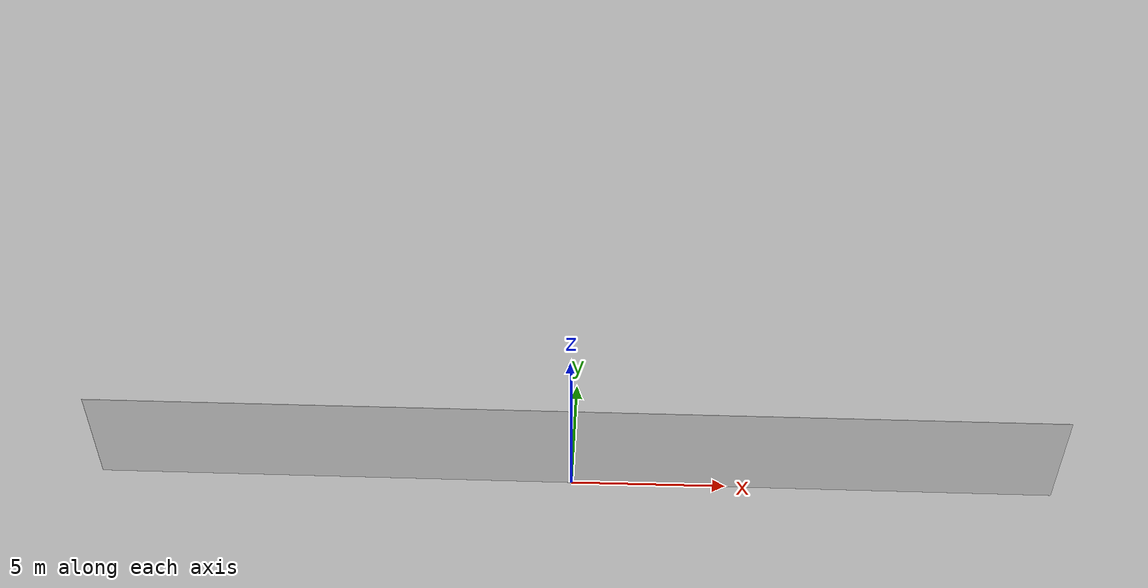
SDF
<?xml version="1.0" ?>
<sdf version="1.5">
  <model name="AIGC2_wall_31m">
    <static>true</static>
    <link name="link">
      <pose>0 0 1.5 0 0 0</pose>
      <collision name="collision">
        <geometry>
          <box>
            <size>31.0 0.02 3.0</size>
          </box>
        </geometry>
      </collision>
      <visual name="visual">
        <cast_shadows>false</cast_shadows>
        <geometry>
          <box>
            <size>31.0 0.02 3.0</size>
          </box>
        </geometry>
        <material>
			<script>
				<name>Gazebo/White</name>
				<uri>file://media/materials/scripts/gazebo.material</uri>
			</script>
        </material>
      </visual>
    </link>
  </model>
</sdf>
